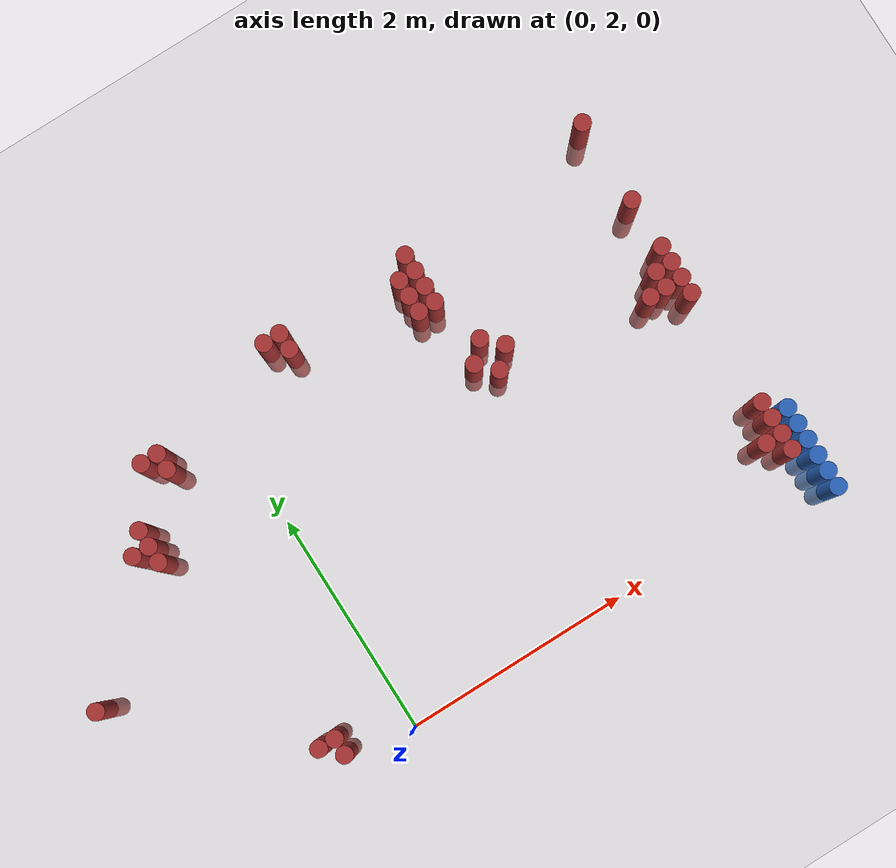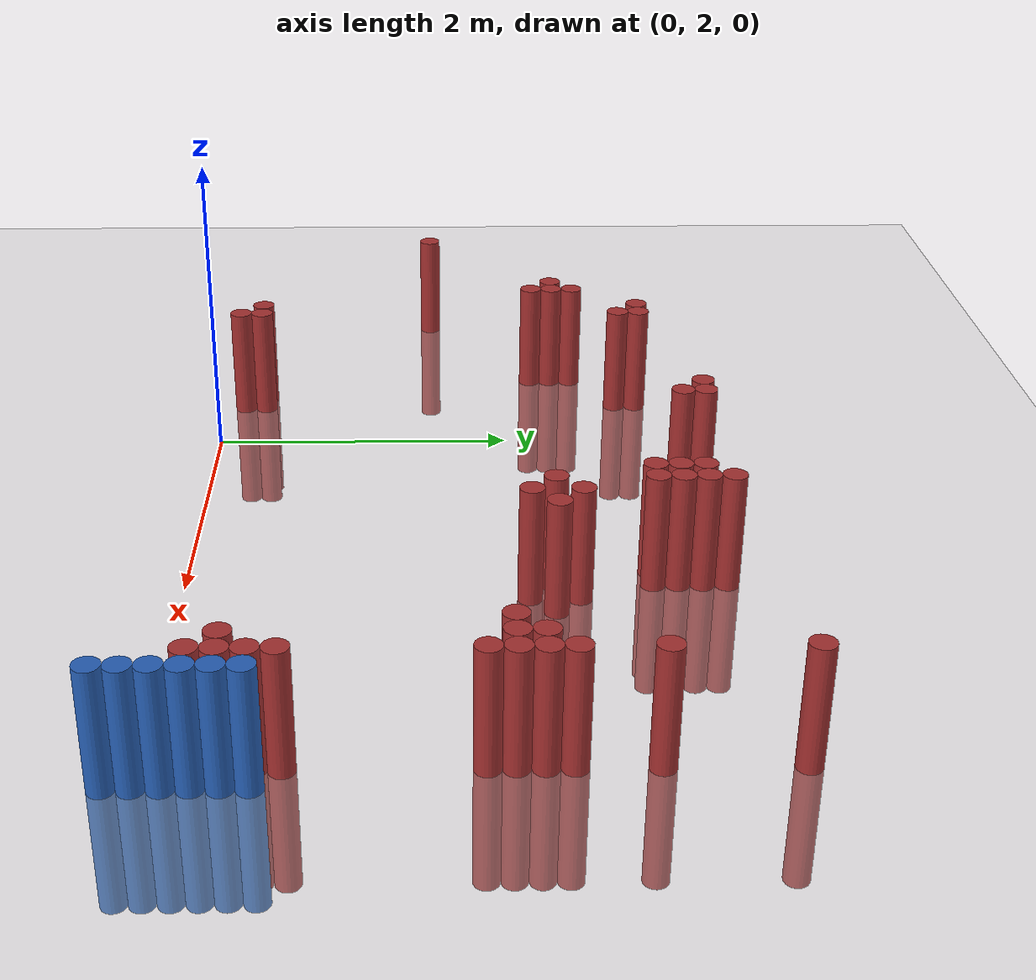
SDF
<sdf version="1.6">
 <world name="default">
  <model name="ground_plane">
   <static>1</static>
   <link name="link">
    <collision name="collision">
     <geometry><plane><normal>0 0 1</normal><size>100 100</size></plane></geometry>
     <surface><friction><ode><mu>100</mu><mu2>50</mu2></ode></friction></surface>
    </collision>
    <visual name="visual">
     <cast_shadows>0</cast_shadows>
     <geometry><plane><normal>0 0 1</normal><size>100 100</size></plane></geometry>
     <material>
      <script><uri>file://media/materials/scripts/gazebo.material</uri><name>Gazebo/Grey</name></script>
     </material>
    </visual>
   </link>
  </model>
  <model name="unit_cylinder_140">
   <static>1</static>
   <pose>3.925000 1.975000 0.000000 0.000000 0.000000 0.000000</pose>
   <link name="link">
    <inertial>
     <mass>1</mass>
     <inertia><ixx>0.145833</ixx><ixy>0</ixy><ixz>0</ixz><iyy>0.145833</iyy><iyz>0</iyz><izz>0.125</izz></inertia>
    </inertial>
    <collision name="collision">
     <geometry><cylinder><radius>0.075000</radius><length>1.5</length></cylinder></geometry>
    </collision>
    <visual name="visual">
     <geometry><cylinder><radius>0.075000</radius><length>1.5</length></cylinder></geometry>
     <material>
      <ambient>0.152000 0.379000 0.720000 1</ambient>
      <diffuse>0.152000 0.379000 0.720000 1</diffuse>
     </material>
     <material>
      <script><name>Gazebo/Grey</name><uri>file://media/materials/scripts/gazebo.material</uri></script>
     </material>
    </visual>
   </link>
  </model>
  <model name="unit_cylinder_142">
   <static>1</static>
   <pose>3.925000 2.125000 0.000000 0.000000 0.000000 0.000000</pose>
   <link name="link">
    <inertial>
     <mass>1</mass>
     <inertia><ixx>0.145833</ixx><ixy>0</ixy><ixz>0</ixz><iyy>0.145833</iyy><iyz>0</iyz><izz>0.125</izz></inertia>
    </inertial>
    <collision name="collision">
     <geometry><cylinder><radius>0.075000</radius><length>1.5</length></cylinder></geometry>
    </collision>
    <visual name="visual">
     <geometry><cylinder><radius>0.075000</radius><length>1.5</length></cylinder></geometry>
     <material>
      <ambient>0.152000 0.379000 0.720000 1</ambient>
      <diffuse>0.152000 0.379000 0.720000 1</diffuse>
     </material>
     <material>
      <script><name>Gazebo/Grey</name><uri>file://media/materials/scripts/gazebo.material</uri></script>
     </material>
    </visual>
   </link>
  </model>
  <model name="unit_cylinder_144">
   <static>1</static>
   <pose>3.925000 2.275000 0.000000 0.000000 0.000000 0.000000</pose>
   <link name="link">
    <inertial>
     <mass>1</mass>
     <inertia><ixx>0.145833</ixx><ixy>0</ixy><ixz>0</ixz><iyy>0.145833</iyy><iyz>0</iyz><izz>0.125</izz></inertia>
    </inertial>
    <collision name="collision">
     <geometry><cylinder><radius>0.075000</radius><length>1.5</length></cylinder></geometry>
    </collision>
    <visual name="visual">
     <geometry><cylinder><radius>0.075000</radius><length>1.5</length></cylinder></geometry>
     <material>
      <ambient>0.152000 0.379000 0.720000 1</ambient>
      <diffuse>0.152000 0.379000 0.720000 1</diffuse>
     </material>
     <material>
      <script><name>Gazebo/Grey</name><uri>file://media/materials/scripts/gazebo.material</uri></script>
     </material>
    </visual>
   </link>
  </model>
  <model name="unit_cylinder_146">
   <static>1</static>
   <pose>3.925000 2.425000 0.000000 0.000000 0.000000 0.000000</pose>
   <link name="link">
    <inertial>
     <mass>1</mass>
     <inertia><ixx>0.145833</ixx><ixy>0</ixy><ixz>0</ixz><iyy>0.145833</iyy><iyz>0</iyz><izz>0.125</izz></inertia>
    </inertial>
    <collision name="collision">
     <geometry><cylinder><radius>0.075000</radius><length>1.5</length></cylinder></geometry>
    </collision>
    <visual name="visual">
     <geometry><cylinder><radius>0.075000</radius><length>1.5</length></cylinder></geometry>
     <material>
      <ambient>0.152000 0.379000 0.720000 1</ambient>
      <diffuse>0.152000 0.379000 0.720000 1</diffuse>
     </material>
     <material>
      <script><name>Gazebo/Grey</name><uri>file://media/materials/scripts/gazebo.material</uri></script>
     </material>
    </visual>
   </link>
  </model>
  <model name="unit_cylinder_148">
   <static>1</static>
   <pose>3.925000 2.575000 0.000000 0.000000 0.000000 0.000000</pose>
   <link name="link">
    <inertial>
     <mass>1</mass>
     <inertia><ixx>0.145833</ixx><ixy>0</ixy><ixz>0</ixz><iyy>0.145833</iyy><iyz>0</iyz><izz>0.125</izz></inertia>
    </inertial>
    <collision name="collision">
     <geometry><cylinder><radius>0.075000</radius><length>1.5</length></cylinder></geometry>
    </collision>
    <visual name="visual">
     <geometry><cylinder><radius>0.075000</radius><length>1.5</length></cylinder></geometry>
     <material>
      <ambient>0.152000 0.379000 0.720000 1</ambient>
      <diffuse>0.152000 0.379000 0.720000 1</diffuse>
     </material>
     <material>
      <script><name>Gazebo/Grey</name><uri>file://media/materials/scripts/gazebo.material</uri></script>
     </material>
    </visual>
   </link>
  </model>
  <model name="unit_cylinder_294">
   <static>1</static>
   <pose>-2.075000 3.475000 0.000000 0.000000 0.000000 0.000000</pose>
   <link name="link">
    <inertial>
     <mass>1</mass>
     <inertia><ixx>0.145833</ixx><ixy>0</ixy><ixz>0</ixz><iyy>0.145833</iyy><iyz>0</iyz><izz>0.125</izz></inertia>
    </inertial>
    <collision name="collision">
     <geometry><cylinder><radius>0.075000</radius><length>1.5</length></cylinder></geometry>
    </collision>
    <visual name="visual">
     <geometry><cylinder><radius>0.075000</radius><length>1.5</length></cylinder></geometry>
     <material>
      <ambient>0.648000 0.192000 0.192000 1</ambient>
      <diffuse>0.648000 0.192000 0.192000 1</diffuse>
     </material>
     <material>
      <script><name>Gazebo/Grey</name><uri>file://media/materials/scripts/gazebo.material</uri></script>
     </material>
    </visual>
   </link>
  </model>
  <model name="unit_cylinder_296">
   <static>1</static>
   <pose>-1.175000 4.375000 0.000000 0.000000 0.000000 0.000000</pose>
   <link name="link">
    <inertial>
     <mass>1</mass>
     <inertia><ixx>0.145833</ixx><ixy>0</ixy><ixz>0</ixz><iyy>0.145833</iyy><iyz>0</iyz><izz>0.125</izz></inertia>
    </inertial>
    <collision name="collision">
     <geometry><cylinder><radius>0.075000</radius><length>1.5</length></cylinder></geometry>
    </collision>
    <visual name="visual">
     <geometry><cylinder><radius>0.075000</radius><length>1.5</length></cylinder></geometry>
     <material>
      <ambient>0.648000 0.192000 0.192000 1</ambient>
      <diffuse>0.648000 0.192000 0.192000 1</diffuse>
     </material>
     <material>
      <script><name>Gazebo/Grey</name><uri>file://media/materials/scripts/gazebo.material</uri></script>
     </material>
    </visual>
   </link>
  </model>
  <model name="unit_cylinder_297">
   <static>1</static>
   <pose>-1.025000 4.225000 0.000000 0.000000 0.000000 0.000000</pose>
   <link name="link">
    <inertial>
     <mass>1</mass>
     <inertia><ixx>0.145833</ixx><ixy>0</ixy><ixz>0</ixz><iyy>0.145833</iyy><iyz>0</iyz><izz>0.125</izz></inertia>
    </inertial>
    <collision name="collision">
     <geometry><cylinder><radius>0.075000</radius><length>1.5</length></cylinder></geometry>
    </collision>
    <visual name="visual">
     <geometry><cylinder><radius>0.075000</radius><length>1.5</length></cylinder></geometry>
     <material>
      <ambient>0.648000 0.192000 0.192000 1</ambient>
      <diffuse>0.648000 0.192000 0.192000 1</diffuse>
     </material>
     <material>
      <script><name>Gazebo/Grey</name><uri>file://media/materials/scripts/gazebo.material</uri></script>
     </material>
    </visual>
   </link>
  </model>
  <model name="unit_cylinder_298">
   <static>1</static>
   <pose>-1.025000 4.375000 0.000000 0.000000 0.000000 0.000000</pose>
   <link name="link">
    <inertial>
     <mass>1</mass>
     <inertia><ixx>0.145833</ixx><ixy>0</ixy><ixz>0</ixz><iyy>0.145833</iyy><iyz>0</iyz><izz>0.125</izz></inertia>
    </inertial>
    <collision name="collision">
     <geometry><cylinder><radius>0.075000</radius><length>1.5</length></cylinder></geometry>
    </collision>
    <visual name="visual">
     <geometry><cylinder><radius>0.075000</radius><length>1.5</length></cylinder></geometry>
     <material>
      <ambient>0.648000 0.192000 0.192000 1</ambient>
      <diffuse>0.648000 0.192000 0.192000 1</diffuse>
     </material>
     <material>
      <script><name>Gazebo/Grey</name><uri>file://media/materials/scripts/gazebo.material</uri></script>
     </material>
    </visual>
   </link>
  </model>
  <model name="unit_cylinder_299">
   <static>1</static>
   <pose>-1.025000 4.525000 0.000000 0.000000 0.000000 0.000000</pose>
   <link name="link">
    <inertial>
     <mass>1</mass>
     <inertia><ixx>0.145833</ixx><ixy>0</ixy><ixz>0</ixz><iyy>0.145833</iyy><iyz>0</iyz><izz>0.125</izz></inertia>
    </inertial>
    <collision name="collision">
     <geometry><cylinder><radius>0.075000</radius><length>1.5</length></cylinder></geometry>
    </collision>
    <visual name="visual">
     <geometry><cylinder><radius>0.075000</radius><length>1.5</length></cylinder></geometry>
     <material>
      <ambient>0.648000 0.192000 0.192000 1</ambient>
      <diffuse>0.648000 0.192000 0.192000 1</diffuse>
     </material>
     <material>
      <script><name>Gazebo/Grey</name><uri>file://media/materials/scripts/gazebo.material</uri></script>
     </material>
    </visual>
   </link>
  </model>
  <model name="unit_cylinder_300">
   <static>1</static>
   <pose>-0.725000 2.275000 0.000000 0.000000 0.000000 0.000000</pose>
   <link name="link">
    <inertial>
     <mass>1</mass>
     <inertia><ixx>0.145833</ixx><ixy>0</ixy><ixz>0</ixz><iyy>0.145833</iyy><iyz>0</iyz><izz>0.125</izz></inertia>
    </inertial>
    <collision name="collision">
     <geometry><cylinder><radius>0.075000</radius><length>1.5</length></cylinder></geometry>
    </collision>
    <visual name="visual">
     <geometry><cylinder><radius>0.075000</radius><length>1.5</length></cylinder></geometry>
     <material>
      <ambient>0.648000 0.192000 0.192000 1</ambient>
      <diffuse>0.648000 0.192000 0.192000 1</diffuse>
     </material>
     <material>
      <script><name>Gazebo/Grey</name><uri>file://media/materials/scripts/gazebo.material</uri></script>
     </material>
    </visual>
   </link>
  </model>
  <model name="unit_cylinder_301">
   <static>1</static>
   <pose>-0.725000 4.975000 0.000000 0.000000 0.000000 0.000000</pose>
   <link name="link">
    <inertial>
     <mass>1</mass>
     <inertia><ixx>0.145833</ixx><ixy>0</ixy><ixz>0</ixz><iyy>0.145833</iyy><iyz>0</iyz><izz>0.125</izz></inertia>
    </inertial>
    <collision name="collision">
     <geometry><cylinder><radius>0.075000</radius><length>1.5</length></cylinder></geometry>
    </collision>
    <visual name="visual">
     <geometry><cylinder><radius>0.075000</radius><length>1.5</length></cylinder></geometry>
     <material>
      <ambient>0.648000 0.192000 0.192000 1</ambient>
      <diffuse>0.648000 0.192000 0.192000 1</diffuse>
     </material>
     <material>
      <script><name>Gazebo/Grey</name><uri>file://media/materials/scripts/gazebo.material</uri></script>
     </material>
    </visual>
   </link>
  </model>
  <model name="unit_cylinder_302">
   <static>1</static>
   <pose>-0.575000 2.125000 0.000000 0.000000 0.000000 0.000000</pose>
   <link name="link">
    <inertial>
     <mass>1</mass>
     <inertia><ixx>0.145833</ixx><ixy>0</ixy><ixz>0</ixz><iyy>0.145833</iyy><iyz>0</iyz><izz>0.125</izz></inertia>
    </inertial>
    <collision name="collision">
     <geometry><cylinder><radius>0.075000</radius><length>1.5</length></cylinder></geometry>
    </collision>
    <visual name="visual">
     <geometry><cylinder><radius>0.075000</radius><length>1.5</length></cylinder></geometry>
     <material>
      <ambient>0.648000 0.192000 0.192000 1</ambient>
      <diffuse>0.648000 0.192000 0.192000 1</diffuse>
     </material>
     <material>
      <script><name>Gazebo/Grey</name><uri>file://media/materials/scripts/gazebo.material</uri></script>
     </material>
    </visual>
   </link>
  </model>
  <model name="unit_cylinder_303">
   <static>1</static>
   <pose>-0.575000 2.275000 0.000000 0.000000 0.000000 0.000000</pose>
   <link name="link">
    <inertial>
     <mass>1</mass>
     <inertia><ixx>0.145833</ixx><ixy>0</ixy><ixz>0</ixz><iyy>0.145833</iyy><iyz>0</iyz><izz>0.125</izz></inertia>
    </inertial>
    <collision name="collision">
     <geometry><cylinder><radius>0.075000</radius><length>1.5</length></cylinder></geometry>
    </collision>
    <visual name="visual">
     <geometry><cylinder><radius>0.075000</radius><length>1.5</length></cylinder></geometry>
     <material>
      <ambient>0.648000 0.192000 0.192000 1</ambient>
      <diffuse>0.648000 0.192000 0.192000 1</diffuse>
     </material>
     <material>
      <script><name>Gazebo/Grey</name><uri>file://media/materials/scripts/gazebo.material</uri></script>
     </material>
    </visual>
   </link>
  </model>
  <model name="unit_cylinder_304">
   <static>1</static>
   <pose>-0.575000 4.825000 0.000000 0.000000 0.000000 0.000000</pose>
   <link name="link">
    <inertial>
     <mass>1</mass>
     <inertia><ixx>0.145833</ixx><ixy>0</ixy><ixz>0</ixz><iyy>0.145833</iyy><iyz>0</iyz><izz>0.125</izz></inertia>
    </inertial>
    <collision name="collision">
     <geometry><cylinder><radius>0.075000</radius><length>1.5</length></cylinder></geometry>
    </collision>
    <visual name="visual">
     <geometry><cylinder><radius>0.075000</radius><length>1.5</length></cylinder></geometry>
     <material>
      <ambient>0.648000 0.192000 0.192000 1</ambient>
      <diffuse>0.648000 0.192000 0.192000 1</diffuse>
     </material>
     <material>
      <script><name>Gazebo/Grey</name><uri>file://media/materials/scripts/gazebo.material</uri></script>
     </material>
    </visual>
   </link>
  </model>
  <model name="unit_cylinder_305">
   <static>1</static>
   <pose>-0.575000 4.975000 0.000000 0.000000 0.000000 0.000000</pose>
   <link name="link">
    <inertial>
     <mass>1</mass>
     <inertia><ixx>0.145833</ixx><ixy>0</ixy><ixz>0</ixz><iyy>0.145833</iyy><iyz>0</iyz><izz>0.125</izz></inertia>
    </inertial>
    <collision name="collision">
     <geometry><cylinder><radius>0.075000</radius><length>1.5</length></cylinder></geometry>
    </collision>
    <visual name="visual">
     <geometry><cylinder><radius>0.075000</radius><length>1.5</length></cylinder></geometry>
     <material>
      <ambient>0.648000 0.192000 0.192000 1</ambient>
      <diffuse>0.648000 0.192000 0.192000 1</diffuse>
     </material>
     <material>
      <script><name>Gazebo/Grey</name><uri>file://media/materials/scripts/gazebo.material</uri></script>
     </material>
    </visual>
   </link>
  </model>
  <model name="unit_cylinder_313">
   <static>1</static>
   <pose>0.625000 5.275000 0.000000 0.000000 0.000000 0.000000</pose>
   <link name="link">
    <inertial>
     <mass>1</mass>
     <inertia><ixx>0.145833</ixx><ixy>0</ixy><ixz>0</ixz><iyy>0.145833</iyy><iyz>0</iyz><izz>0.125</izz></inertia>
    </inertial>
    <collision name="collision">
     <geometry><cylinder><radius>0.075000</radius><length>1.5</length></cylinder></geometry>
    </collision>
    <visual name="visual">
     <geometry><cylinder><radius>0.075000</radius><length>1.5</length></cylinder></geometry>
     <material>
      <ambient>0.648000 0.192000 0.192000 1</ambient>
      <diffuse>0.648000 0.192000 0.192000 1</diffuse>
     </material>
     <material>
      <script><name>Gazebo/Grey</name><uri>file://media/materials/scripts/gazebo.material</uri></script>
     </material>
    </visual>
   </link>
  </model>
  <model name="unit_cylinder_317">
   <static>1</static>
   <pose>0.775000 5.125000 0.000000 0.000000 0.000000 0.000000</pose>
   <link name="link">
    <inertial>
     <mass>1</mass>
     <inertia><ixx>0.145833</ixx><ixy>0</ixy><ixz>0</ixz><iyy>0.145833</iyy><iyz>0</iyz><izz>0.125</izz></inertia>
    </inertial>
    <collision name="collision">
     <geometry><cylinder><radius>0.075000</radius><length>1.5</length></cylinder></geometry>
    </collision>
    <visual name="visual">
     <geometry><cylinder><radius>0.075000</radius><length>1.5</length></cylinder></geometry>
     <material>
      <ambient>0.648000 0.192000 0.192000 1</ambient>
      <diffuse>0.648000 0.192000 0.192000 1</diffuse>
     </material>
     <material>
      <script><name>Gazebo/Grey</name><uri>file://media/materials/scripts/gazebo.material</uri></script>
     </material>
    </visual>
   </link>
  </model>
  <model name="unit_cylinder_318">
   <static>1</static>
   <pose>0.775000 5.275000 0.000000 0.000000 0.000000 0.000000</pose>
   <link name="link">
    <inertial>
     <mass>1</mass>
     <inertia><ixx>0.145833</ixx><ixy>0</ixy><ixz>0</ixz><iyy>0.145833</iyy><iyz>0</iyz><izz>0.125</izz></inertia>
    </inertial>
    <collision name="collision">
     <geometry><cylinder><radius>0.075000</radius><length>1.5</length></cylinder></geometry>
    </collision>
    <visual name="visual">
     <geometry><cylinder><radius>0.075000</radius><length>1.5</length></cylinder></geometry>
     <material>
      <ambient>0.648000 0.192000 0.192000 1</ambient>
      <diffuse>0.648000 0.192000 0.192000 1</diffuse>
     </material>
     <material>
      <script><name>Gazebo/Grey</name><uri>file://media/materials/scripts/gazebo.material</uri></script>
     </material>
    </visual>
   </link>
  </model>
  <model name="unit_cylinder_343">
   <static>1</static>
   <pose>1.825000 4.825000 0.000000 0.000000 0.000000 0.000000</pose>
   <link name="link">
    <inertial>
     <mass>1</mass>
     <inertia><ixx>0.145833</ixx><ixy>0</ixy><ixz>0</ixz><iyy>0.145833</iyy><iyz>0</iyz><izz>0.125</izz></inertia>
    </inertial>
    <collision name="collision">
     <geometry><cylinder><radius>0.075000</radius><length>1.5</length></cylinder></geometry>
    </collision>
    <visual name="visual">
     <geometry><cylinder><radius>0.075000</radius><length>1.5</length></cylinder></geometry>
     <material>
      <ambient>0.648000 0.192000 0.192000 1</ambient>
      <diffuse>0.648000 0.192000 0.192000 1</diffuse>
     </material>
     <material>
      <script><name>Gazebo/Grey</name><uri>file://media/materials/scripts/gazebo.material</uri></script>
     </material>
    </visual>
   </link>
  </model>
  <model name="unit_cylinder_344">
   <static>1</static>
   <pose>1.825000 4.975000 0.000000 0.000000 0.000000 0.000000</pose>
   <link name="link">
    <inertial>
     <mass>1</mass>
     <inertia><ixx>0.145833</ixx><ixy>0</ixy><ixz>0</ixz><iyy>0.145833</iyy><iyz>0</iyz><izz>0.125</izz></inertia>
    </inertial>
    <collision name="collision">
     <geometry><cylinder><radius>0.075000</radius><length>1.5</length></cylinder></geometry>
    </collision>
    <visual name="visual">
     <geometry><cylinder><radius>0.075000</radius><length>1.5</length></cylinder></geometry>
     <material>
      <ambient>0.648000 0.192000 0.192000 1</ambient>
      <diffuse>0.648000 0.192000 0.192000 1</diffuse>
     </material>
     <material>
      <script><name>Gazebo/Grey</name><uri>file://media/materials/scripts/gazebo.material</uri></script>
     </material>
    </visual>
   </link>
  </model>
  <model name="unit_cylinder_345">
   <static>1</static>
   <pose>1.825000 5.125000 0.000000 0.000000 0.000000 0.000000</pose>
   <link name="link">
    <inertial>
     <mass>1</mass>
     <inertia><ixx>0.145833</ixx><ixy>0</ixy><ixz>0</ixz><iyy>0.145833</iyy><iyz>0</iyz><izz>0.125</izz></inertia>
    </inertial>
    <collision name="collision">
     <geometry><cylinder><radius>0.075000</radius><length>1.5</length></cylinder></geometry>
    </collision>
    <visual name="visual">
     <geometry><cylinder><radius>0.075000</radius><length>1.5</length></cylinder></geometry>
     <material>
      <ambient>0.648000 0.192000 0.192000 1</ambient>
      <diffuse>0.648000 0.192000 0.192000 1</diffuse>
     </material>
     <material>
      <script><name>Gazebo/Grey</name><uri>file://media/materials/scripts/gazebo.material</uri></script>
     </material>
    </visual>
   </link>
  </model>
  <model name="unit_cylinder_348">
   <static>1</static>
   <pose>1.975000 4.225000 0.000000 0.000000 0.000000 0.000000</pose>
   <link name="link">
    <inertial>
     <mass>1</mass>
     <inertia><ixx>0.145833</ixx><ixy>0</ixy><ixz>0</ixz><iyy>0.145833</iyy><iyz>0</iyz><izz>0.125</izz></inertia>
    </inertial>
    <collision name="collision">
     <geometry><cylinder><radius>0.075000</radius><length>1.5</length></cylinder></geometry>
    </collision>
    <visual name="visual">
     <geometry><cylinder><radius>0.075000</radius><length>1.5</length></cylinder></geometry>
     <material>
      <ambient>0.648000 0.192000 0.192000 1</ambient>
      <diffuse>0.648000 0.192000 0.192000 1</diffuse>
     </material>
     <material>
      <script><name>Gazebo/Grey</name><uri>file://media/materials/scripts/gazebo.material</uri></script>
     </material>
    </visual>
   </link>
  </model>
  <model name="unit_cylinder_349">
   <static>1</static>
   <pose>1.975000 4.825000 0.000000 0.000000 0.000000 0.000000</pose>
   <link name="link">
    <inertial>
     <mass>1</mass>
     <inertia><ixx>0.145833</ixx><ixy>0</ixy><ixz>0</ixz><iyy>0.145833</iyy><iyz>0</iyz><izz>0.125</izz></inertia>
    </inertial>
    <collision name="collision">
     <geometry><cylinder><radius>0.075000</radius><length>1.5</length></cylinder></geometry>
    </collision>
    <visual name="visual">
     <geometry><cylinder><radius>0.075000</radius><length>1.5</length></cylinder></geometry>
     <material>
      <ambient>0.648000 0.192000 0.192000 1</ambient>
      <diffuse>0.648000 0.192000 0.192000 1</diffuse>
     </material>
     <material>
      <script><name>Gazebo/Grey</name><uri>file://media/materials/scripts/gazebo.material</uri></script>
     </material>
    </visual>
   </link>
  </model>
  <model name="unit_cylinder_350">
   <static>1</static>
   <pose>1.975000 4.975000 0.000000 0.000000 0.000000 0.000000</pose>
   <link name="link">
    <inertial>
     <mass>1</mass>
     <inertia><ixx>0.145833</ixx><ixy>0</ixy><ixz>0</ixz><iyy>0.145833</iyy><iyz>0</iyz><izz>0.125</izz></inertia>
    </inertial>
    <collision name="collision">
     <geometry><cylinder><radius>0.075000</radius><length>1.5</length></cylinder></geometry>
    </collision>
    <visual name="visual">
     <geometry><cylinder><radius>0.075000</radius><length>1.5</length></cylinder></geometry>
     <material>
      <ambient>0.648000 0.192000 0.192000 1</ambient>
      <diffuse>0.648000 0.192000 0.192000 1</diffuse>
     </material>
     <material>
      <script><name>Gazebo/Grey</name><uri>file://media/materials/scripts/gazebo.material</uri></script>
     </material>
    </visual>
   </link>
  </model>
  <model name="unit_cylinder_351">
   <static>1</static>
   <pose>1.975000 5.125000 0.000000 0.000000 0.000000 0.000000</pose>
   <link name="link">
    <inertial>
     <mass>1</mass>
     <inertia><ixx>0.145833</ixx><ixy>0</ixy><ixz>0</ixz><iyy>0.145833</iyy><iyz>0</iyz><izz>0.125</izz></inertia>
    </inertial>
    <collision name="collision">
     <geometry><cylinder><radius>0.075000</radius><length>1.5</length></cylinder></geometry>
    </collision>
    <visual name="visual">
     <geometry><cylinder><radius>0.075000</radius><length>1.5</length></cylinder></geometry>
     <material>
      <ambient>0.648000 0.192000 0.192000 1</ambient>
      <diffuse>0.648000 0.192000 0.192000 1</diffuse>
     </material>
     <material>
      <script><name>Gazebo/Grey</name><uri>file://media/materials/scripts/gazebo.material</uri></script>
     </material>
    </visual>
   </link>
  </model>
  <model name="unit_cylinder_352">
   <static>1</static>
   <pose>1.975000 5.275000 0.000000 0.000000 0.000000 0.000000</pose>
   <link name="link">
    <inertial>
     <mass>1</mass>
     <inertia><ixx>0.145833</ixx><ixy>0</ixy><ixz>0</ixz><iyy>0.145833</iyy><iyz>0</iyz><izz>0.125</izz></inertia>
    </inertial>
    <collision name="collision">
     <geometry><cylinder><radius>0.075000</radius><length>1.5</length></cylinder></geometry>
    </collision>
    <visual name="visual">
     <geometry><cylinder><radius>0.075000</radius><length>1.5</length></cylinder></geometry>
     <material>
      <ambient>0.648000 0.192000 0.192000 1</ambient>
      <diffuse>0.648000 0.192000 0.192000 1</diffuse>
     </material>
     <material>
      <script><name>Gazebo/Grey</name><uri>file://media/materials/scripts/gazebo.material</uri></script>
     </material>
    </visual>
   </link>
  </model>
  <model name="unit_cylinder_356">
   <static>1</static>
   <pose>2.125000 4.075000 0.000000 0.000000 0.000000 0.000000</pose>
   <link name="link">
    <inertial>
     <mass>1</mass>
     <inertia><ixx>0.145833</ixx><ixy>0</ixy><ixz>0</ixz><iyy>0.145833</iyy><iyz>0</iyz><izz>0.125</izz></inertia>
    </inertial>
    <collision name="collision">
     <geometry><cylinder><radius>0.075000</radius><length>1.5</length></cylinder></geometry>
    </collision>
    <visual name="visual">
     <geometry><cylinder><radius>0.075000</radius><length>1.5</length></cylinder></geometry>
     <material>
      <ambient>0.648000 0.192000 0.192000 1</ambient>
      <diffuse>0.648000 0.192000 0.192000 1</diffuse>
     </material>
     <material>
      <script><name>Gazebo/Grey</name><uri>file://media/materials/scripts/gazebo.material</uri></script>
     </material>
    </visual>
   </link>
  </model>
  <model name="unit_cylinder_357">
   <static>1</static>
   <pose>2.125000 4.375000 0.000000 0.000000 0.000000 0.000000</pose>
   <link name="link">
    <inertial>
     <mass>1</mass>
     <inertia><ixx>0.145833</ixx><ixy>0</ixy><ixz>0</ixz><iyy>0.145833</iyy><iyz>0</iyz><izz>0.125</izz></inertia>
    </inertial>
    <collision name="collision">
     <geometry><cylinder><radius>0.075000</radius><length>1.5</length></cylinder></geometry>
    </collision>
    <visual name="visual">
     <geometry><cylinder><radius>0.075000</radius><length>1.5</length></cylinder></geometry>
     <material>
      <ambient>0.648000 0.192000 0.192000 1</ambient>
      <diffuse>0.648000 0.192000 0.192000 1</diffuse>
     </material>
     <material>
      <script><name>Gazebo/Grey</name><uri>file://media/materials/scripts/gazebo.material</uri></script>
     </material>
    </visual>
   </link>
  </model>
  <model name="unit_cylinder_360">
   <static>1</static>
   <pose>2.275000 4.225000 0.000000 0.000000 0.000000 0.000000</pose>
   <link name="link">
    <inertial>
     <mass>1</mass>
     <inertia><ixx>0.145833</ixx><ixy>0</ixy><ixz>0</ixz><iyy>0.145833</iyy><iyz>0</iyz><izz>0.125</izz></inertia>
    </inertial>
    <collision name="collision">
     <geometry><cylinder><radius>0.075000</radius><length>1.5</length></cylinder></geometry>
    </collision>
    <visual name="visual">
     <geometry><cylinder><radius>0.075000</radius><length>1.5</length></cylinder></geometry>
     <material>
      <ambient>0.648000 0.192000 0.192000 1</ambient>
      <diffuse>0.648000 0.192000 0.192000 1</diffuse>
     </material>
     <material>
      <script><name>Gazebo/Grey</name><uri>file://media/materials/scripts/gazebo.material</uri></script>
     </material>
    </visual>
   </link>
  </model>
  <model name="unit_cylinder_363">
   <static>1</static>
   <pose>3.475000 3.925000 0.000000 0.000000 0.000000 0.000000</pose>
   <link name="link">
    <inertial>
     <mass>1</mass>
     <inertia><ixx>0.145833</ixx><ixy>0</ixy><ixz>0</ixz><iyy>0.145833</iyy><iyz>0</iyz><izz>0.125</izz></inertia>
    </inertial>
    <collision name="collision">
     <geometry><cylinder><radius>0.075000</radius><length>1.5</length></cylinder></geometry>
    </collision>
    <visual name="visual">
     <geometry><cylinder><radius>0.075000</radius><length>1.5</length></cylinder></geometry>
     <material>
      <ambient>0.648000 0.192000 0.192000 1</ambient>
      <diffuse>0.648000 0.192000 0.192000 1</diffuse>
     </material>
     <material>
      <script><name>Gazebo/Grey</name><uri>file://media/materials/scripts/gazebo.material</uri></script>
     </material>
    </visual>
   </link>
  </model>
  <model name="unit_cylinder_366">
   <static>1</static>
   <pose>3.625000 2.425000 0.000000 0.000000 0.000000 0.000000</pose>
   <link name="link">
    <inertial>
     <mass>1</mass>
     <inertia><ixx>0.145833</ixx><ixy>0</ixy><ixz>0</ixz><iyy>0.145833</iyy><iyz>0</iyz><izz>0.125</izz></inertia>
    </inertial>
    <collision name="collision">
     <geometry><cylinder><radius>0.075000</radius><length>1.5</length></cylinder></geometry>
    </collision>
    <visual name="visual">
     <geometry><cylinder><radius>0.075000</radius><length>1.5</length></cylinder></geometry>
     <material>
      <ambient>0.648000 0.192000 0.192000 1</ambient>
      <diffuse>0.648000 0.192000 0.192000 1</diffuse>
     </material>
     <material>
      <script><name>Gazebo/Grey</name><uri>file://media/materials/scripts/gazebo.material</uri></script>
     </material>
    </visual>
   </link>
  </model>
  <model name="unit_cylinder_367">
   <static>1</static>
   <pose>3.625000 3.925000 0.000000 0.000000 0.000000 0.000000</pose>
   <link name="link">
    <inertial>
     <mass>1</mass>
     <inertia><ixx>0.145833</ixx><ixy>0</ixy><ixz>0</ixz><iyy>0.145833</iyy><iyz>0</iyz><izz>0.125</izz></inertia>
    </inertial>
    <collision name="collision">
     <geometry><cylinder><radius>0.075000</radius><length>1.5</length></cylinder></geometry>
    </collision>
    <visual name="visual">
     <geometry><cylinder><radius>0.075000</radius><length>1.5</length></cylinder></geometry>
     <material>
      <ambient>0.648000 0.192000 0.192000 1</ambient>
      <diffuse>0.648000 0.192000 0.192000 1</diffuse>
     </material>
     <material>
      <script><name>Gazebo/Grey</name><uri>file://media/materials/scripts/gazebo.material</uri></script>
     </material>
    </visual>
   </link>
  </model>
  <model name="unit_cylinder_368">
   <static>1</static>
   <pose>3.625000 4.075000 0.000000 0.000000 0.000000 0.000000</pose>
   <link name="link">
    <inertial>
     <mass>1</mass>
     <inertia><ixx>0.145833</ixx><ixy>0</ixy><ixz>0</ixz><iyy>0.145833</iyy><iyz>0</iyz><izz>0.125</izz></inertia>
    </inertial>
    <collision name="collision">
     <geometry><cylinder><radius>0.075000</radius><length>1.5</length></cylinder></geometry>
    </collision>
    <visual name="visual">
     <geometry><cylinder><radius>0.075000</radius><length>1.5</length></cylinder></geometry>
     <material>
      <ambient>0.648000 0.192000 0.192000 1</ambient>
      <diffuse>0.648000 0.192000 0.192000 1</diffuse>
     </material>
     <material>
      <script><name>Gazebo/Grey</name><uri>file://media/materials/scripts/gazebo.material</uri></script>
     </material>
    </visual>
   </link>
  </model>
  <model name="unit_cylinder_381">
   <static>1</static>
   <pose>3.775000 2.275000 0.000000 0.000000 0.000000 0.000000</pose>
   <link name="link">
    <inertial>
     <mass>1</mass>
     <inertia><ixx>0.145833</ixx><ixy>0</ixy><ixz>0</ixz><iyy>0.145833</iyy><iyz>0</iyz><izz>0.125</izz></inertia>
    </inertial>
    <collision name="collision">
     <geometry><cylinder><radius>0.075000</radius><length>1.5</length></cylinder></geometry>
    </collision>
    <visual name="visual">
     <geometry><cylinder><radius>0.075000</radius><length>1.5</length></cylinder></geometry>
     <material>
      <ambient>0.648000 0.192000 0.192000 1</ambient>
      <diffuse>0.648000 0.192000 0.192000 1</diffuse>
     </material>
     <material>
      <script><name>Gazebo/Grey</name><uri>file://media/materials/scripts/gazebo.material</uri></script>
     </material>
    </visual>
   </link>
  </model>
  <model name="unit_cylinder_382">
   <static>1</static>
   <pose>3.775000 2.425000 0.000000 0.000000 0.000000 0.000000</pose>
   <link name="link">
    <inertial>
     <mass>1</mass>
     <inertia><ixx>0.145833</ixx><ixy>0</ixy><ixz>0</ixz><iyy>0.145833</iyy><iyz>0</iyz><izz>0.125</izz></inertia>
    </inertial>
    <collision name="collision">
     <geometry><cylinder><radius>0.075000</radius><length>1.5</length></cylinder></geometry>
    </collision>
    <visual name="visual">
     <geometry><cylinder><radius>0.075000</radius><length>1.5</length></cylinder></geometry>
     <material>
      <ambient>0.648000 0.192000 0.192000 1</ambient>
      <diffuse>0.648000 0.192000 0.192000 1</diffuse>
     </material>
     <material>
      <script><name>Gazebo/Grey</name><uri>file://media/materials/scripts/gazebo.material</uri></script>
     </material>
    </visual>
   </link>
  </model>
  <model name="unit_cylinder_383">
   <static>1</static>
   <pose>3.775000 2.575000 0.000000 0.000000 0.000000 0.000000</pose>
   <link name="link">
    <inertial>
     <mass>1</mass>
     <inertia><ixx>0.145833</ixx><ixy>0</ixy><ixz>0</ixz><iyy>0.145833</iyy><iyz>0</iyz><izz>0.125</izz></inertia>
    </inertial>
    <collision name="collision">
     <geometry><cylinder><radius>0.075000</radius><length>1.5</length></cylinder></geometry>
    </collision>
    <visual name="visual">
     <geometry><cylinder><radius>0.075000</radius><length>1.5</length></cylinder></geometry>
     <material>
      <ambient>0.648000 0.192000 0.192000 1</ambient>
      <diffuse>0.648000 0.192000 0.192000 1</diffuse>
     </material>
     <material>
      <script><name>Gazebo/Grey</name><uri>file://media/materials/scripts/gazebo.material</uri></script>
     </material>
    </visual>
   </link>
  </model>
  <model name="unit_cylinder_384">
   <static>1</static>
   <pose>3.775000 2.725000 0.000000 0.000000 0.000000 0.000000</pose>
   <link name="link">
    <inertial>
     <mass>1</mass>
     <inertia><ixx>0.145833</ixx><ixy>0</ixy><ixz>0</ixz><iyy>0.145833</iyy><iyz>0</iyz><izz>0.125</izz></inertia>
    </inertial>
    <collision name="collision">
     <geometry><cylinder><radius>0.075000</radius><length>1.5</length></cylinder></geometry>
    </collision>
    <visual name="visual">
     <geometry><cylinder><radius>0.075000</radius><length>1.5</length></cylinder></geometry>
     <material>
      <ambient>0.648000 0.192000 0.192000 1</ambient>
      <diffuse>0.648000 0.192000 0.192000 1</diffuse>
     </material>
     <material>
      <script><name>Gazebo/Grey</name><uri>file://media/materials/scripts/gazebo.material</uri></script>
     </material>
    </visual>
   </link>
  </model>
  <model name="unit_cylinder_385">
   <static>1</static>
   <pose>3.775000 3.775000 0.000000 0.000000 0.000000 0.000000</pose>
   <link name="link">
    <inertial>
     <mass>1</mass>
     <inertia><ixx>0.145833</ixx><ixy>0</ixy><ixz>0</ixz><iyy>0.145833</iyy><iyz>0</iyz><izz>0.125</izz></inertia>
    </inertial>
    <collision name="collision">
     <geometry><cylinder><radius>0.075000</radius><length>1.5</length></cylinder></geometry>
    </collision>
    <visual name="visual">
     <geometry><cylinder><radius>0.075000</radius><length>1.5</length></cylinder></geometry>
     <material>
      <ambient>0.648000 0.192000 0.192000 1</ambient>
      <diffuse>0.648000 0.192000 0.192000 1</diffuse>
     </material>
     <material>
      <script><name>Gazebo/Grey</name><uri>file://media/materials/scripts/gazebo.material</uri></script>
     </material>
    </visual>
   </link>
  </model>
  <model name="unit_cylinder_386">
   <static>1</static>
   <pose>3.775000 3.925000 0.000000 0.000000 0.000000 0.000000</pose>
   <link name="link">
    <inertial>
     <mass>1</mass>
     <inertia><ixx>0.145833</ixx><ixy>0</ixy><ixz>0</ixz><iyy>0.145833</iyy><iyz>0</iyz><izz>0.125</izz></inertia>
    </inertial>
    <collision name="collision">
     <geometry><cylinder><radius>0.075000</radius><length>1.5</length></cylinder></geometry>
    </collision>
    <visual name="visual">
     <geometry><cylinder><radius>0.075000</radius><length>1.5</length></cylinder></geometry>
     <material>
      <ambient>0.648000 0.192000 0.192000 1</ambient>
      <diffuse>0.648000 0.192000 0.192000 1</diffuse>
     </material>
     <material>
      <script><name>Gazebo/Grey</name><uri>file://media/materials/scripts/gazebo.material</uri></script>
     </material>
    </visual>
   </link>
  </model>
  <model name="unit_cylinder_387">
   <static>1</static>
   <pose>3.775000 4.075000 0.000000 0.000000 0.000000 0.000000</pose>
   <link name="link">
    <inertial>
     <mass>1</mass>
     <inertia><ixx>0.145833</ixx><ixy>0</ixy><ixz>0</ixz><iyy>0.145833</iyy><iyz>0</iyz><izz>0.125</izz></inertia>
    </inertial>
    <collision name="collision">
     <geometry><cylinder><radius>0.075000</radius><length>1.5</length></cylinder></geometry>
    </collision>
    <visual name="visual">
     <geometry><cylinder><radius>0.075000</radius><length>1.5</length></cylinder></geometry>
     <material>
      <ambient>0.648000 0.192000 0.192000 1</ambient>
      <diffuse>0.648000 0.192000 0.192000 1</diffuse>
     </material>
     <material>
      <script><name>Gazebo/Grey</name><uri>file://media/materials/scripts/gazebo.material</uri></script>
     </material>
    </visual>
   </link>
  </model>
  <model name="unit_cylinder_388">
   <static>1</static>
   <pose>3.775000 4.225000 0.000000 0.000000 0.000000 0.000000</pose>
   <link name="link">
    <inertial>
     <mass>1</mass>
     <inertia><ixx>0.145833</ixx><ixy>0</ixy><ixz>0</ixz><iyy>0.145833</iyy><iyz>0</iyz><izz>0.125</izz></inertia>
    </inertial>
    <collision name="collision">
     <geometry><cylinder><radius>0.075000</radius><length>1.5</length></cylinder></geometry>
    </collision>
    <visual name="visual">
     <geometry><cylinder><radius>0.075000</radius><length>1.5</length></cylinder></geometry>
     <material>
      <ambient>0.648000 0.192000 0.192000 1</ambient>
      <diffuse>0.648000 0.192000 0.192000 1</diffuse>
     </material>
     <material>
      <script><name>Gazebo/Grey</name><uri>file://media/materials/scripts/gazebo.material</uri></script>
     </material>
    </visual>
   </link>
  </model>
  <model name="unit_cylinder_389">
   <static>1</static>
   <pose>3.775000 4.675000 0.000000 0.000000 0.000000 0.000000</pose>
   <link name="link">
    <inertial>
     <mass>1</mass>
     <inertia><ixx>0.145833</ixx><ixy>0</ixy><ixz>0</ixz><iyy>0.145833</iyy><iyz>0</iyz><izz>0.125</izz></inertia>
    </inertial>
    <collision name="collision">
     <geometry><cylinder><radius>0.075000</radius><length>1.5</length></cylinder></geometry>
    </collision>
    <visual name="visual">
     <geometry><cylinder><radius>0.075000</radius><length>1.5</length></cylinder></geometry>
     <material>
      <ambient>0.648000 0.192000 0.192000 1</ambient>
      <diffuse>0.648000 0.192000 0.192000 1</diffuse>
     </material>
     <material>
      <script><name>Gazebo/Grey</name><uri>file://media/materials/scripts/gazebo.material</uri></script>
     </material>
    </visual>
   </link>
  </model>
  <model name="unit_cylinder_390">
   <static>1</static>
   <pose>3.775000 5.425000 0.000000 0.000000 0.000000 0.000000</pose>
   <link name="link">
    <inertial>
     <mass>1</mass>
     <inertia><ixx>0.145833</ixx><ixy>0</ixy><ixz>0</ixz><iyy>0.145833</iyy><iyz>0</iyz><izz>0.125</izz></inertia>
    </inertial>
    <collision name="collision">
     <geometry><cylinder><radius>0.075000</radius><length>1.5</length></cylinder></geometry>
    </collision>
    <visual name="visual">
     <geometry><cylinder><radius>0.075000</radius><length>1.5</length></cylinder></geometry>
     <material>
      <ambient>0.648000 0.192000 0.192000 1</ambient>
      <diffuse>0.648000 0.192000 0.192000 1</diffuse>
     </material>
     <material>
      <script><name>Gazebo/Grey</name><uri>file://media/materials/scripts/gazebo.material</uri></script>
     </material>
    </visual>
   </link>
  </model>
  <model name="unit_cylinder_416">
   <static>1</static>
   <pose>3.925000 1.825000 0.000000 0.000000 0.000000 0.000000</pose>
   <link name="link">
    <inertial>
     <mass>1</mass>
     <inertia><ixx>0.145833</ixx><ixy>0</ixy><ixz>0</ixz><iyy>0.145833</iyy><iyz>0</iyz><izz>0.125</izz></inertia>
    </inertial>
    <collision name="collision">
     <geometry><cylinder><radius>0.075000</radius><length>1.5</length></cylinder></geometry>
    </collision>
    <visual name="visual">
     <geometry><cylinder><radius>0.075000</radius><length>1.5</length></cylinder></geometry>
     <material>
      <ambient>0.152000 0.379000 0.720000 1</ambient>
      <diffuse>0.152000 0.379000 0.720000 1</diffuse>
     </material>
     <material>
      <script><name>Gazebo/Grey</name><uri>file://media/materials/scripts/gazebo.material</uri></script>
     </material>
    </visual>
   </link>
  </model>
  <model name="unit_cylinder_417">
   <static>1</static>
   <pose>3.925000 1.975000 0.000000 0.000000 0.000000 0.000000</pose>
   <link name="link">
    <inertial>
     <mass>1</mass>
     <inertia><ixx>0.145833</ixx><ixy>0</ixy><ixz>0</ixz><iyy>0.145833</iyy><iyz>0</iyz><izz>0.125</izz></inertia>
    </inertial>
    <collision name="collision">
     <geometry><cylinder><radius>0.075000</radius><length>1.5</length></cylinder></geometry>
    </collision>
    <visual name="visual">
     <geometry><cylinder><radius>0.075000</radius><length>1.5</length></cylinder></geometry>
     <material>
      <ambient>0.152000 0.379000 0.720000 1</ambient>
      <diffuse>0.152000 0.379000 0.720000 1</diffuse>
     </material>
     <material>
      <script><name>Gazebo/Grey</name><uri>file://media/materials/scripts/gazebo.material</uri></script>
     </material>
    </visual>
   </link>
  </model>
  <model name="unit_cylinder_418">
   <static>1</static>
   <pose>3.925000 2.125000 0.000000 0.000000 0.000000 0.000000</pose>
   <link name="link">
    <inertial>
     <mass>1</mass>
     <inertia><ixx>0.145833</ixx><ixy>0</ixy><ixz>0</ixz><iyy>0.145833</iyy><iyz>0</iyz><izz>0.125</izz></inertia>
    </inertial>
    <collision name="collision">
     <geometry><cylinder><radius>0.075000</radius><length>1.5</length></cylinder></geometry>
    </collision>
    <visual name="visual">
     <geometry><cylinder><radius>0.075000</radius><length>1.5</length></cylinder></geometry>
     <material>
      <ambient>0.152000 0.379000 0.720000 1</ambient>
      <diffuse>0.152000 0.379000 0.720000 1</diffuse>
     </material>
     <material>
      <script><name>Gazebo/Grey</name><uri>file://media/materials/scripts/gazebo.material</uri></script>
     </material>
    </visual>
   </link>
  </model>
  <model name="unit_cylinder_419">
   <static>1</static>
   <pose>3.925000 2.275000 0.000000 0.000000 0.000000 0.000000</pose>
   <link name="link">
    <inertial>
     <mass>1</mass>
     <inertia><ixx>0.145833</ixx><ixy>0</ixy><ixz>0</ixz><iyy>0.145833</iyy><iyz>0</iyz><izz>0.125</izz></inertia>
    </inertial>
    <collision name="collision">
     <geometry><cylinder><radius>0.075000</radius><length>1.5</length></cylinder></geometry>
    </collision>
    <visual name="visual">
     <geometry><cylinder><radius>0.075000</radius><length>1.5</length></cylinder></geometry>
     <material>
      <ambient>0.152000 0.379000 0.720000 1</ambient>
      <diffuse>0.152000 0.379000 0.720000 1</diffuse>
     </material>
     <material>
      <script><name>Gazebo/Grey</name><uri>file://media/materials/scripts/gazebo.material</uri></script>
     </material>
    </visual>
   </link>
  </model>
  <model name="unit_cylinder_420">
   <static>1</static>
   <pose>3.925000 2.425000 0.000000 0.000000 0.000000 0.000000</pose>
   <link name="link">
    <inertial>
     <mass>1</mass>
     <inertia><ixx>0.145833</ixx><ixy>0</ixy><ixz>0</ixz><iyy>0.145833</iyy><iyz>0</iyz><izz>0.125</izz></inertia>
    </inertial>
    <collision name="collision">
     <geometry><cylinder><radius>0.075000</radius><length>1.5</length></cylinder></geometry>
    </collision>
    <visual name="visual">
     <geometry><cylinder><radius>0.075000</radius><length>1.5</length></cylinder></geometry>
     <material>
      <ambient>0.152000 0.379000 0.720000 1</ambient>
      <diffuse>0.152000 0.379000 0.720000 1</diffuse>
     </material>
     <material>
      <script><name>Gazebo/Grey</name><uri>file://media/materials/scripts/gazebo.material</uri></script>
     </material>
    </visual>
   </link>
  </model>
 </world>
</sdf>
